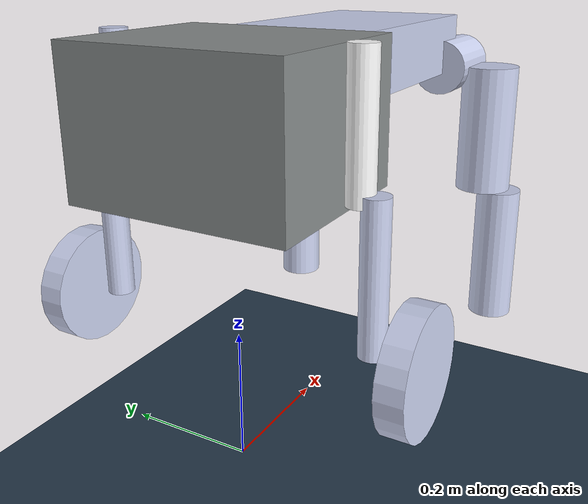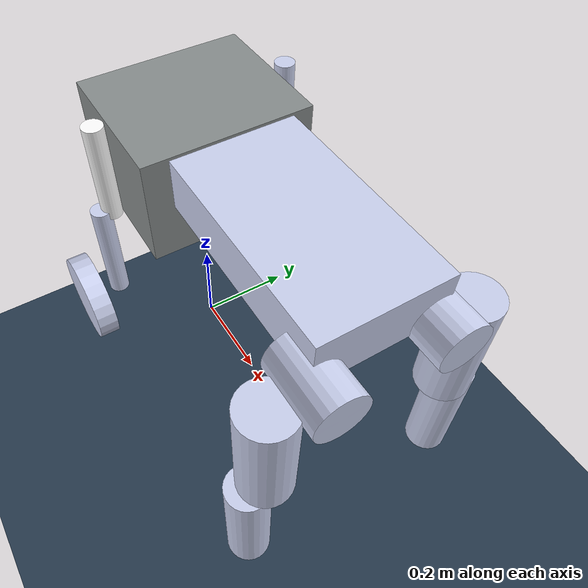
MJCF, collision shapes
<mujoco model="Wheel_legged_sim">
  <compiler angle="radian" meshdir="../meshes_controller/" autolimits="true"/>
    <size njmax="500" nconmax="100" />
    <option timestep="0.001" iterations="50" solver="PGS" gravity="0 0 -9.81" noslip_iterations="20">
    </option>
    <default>
      <geom contype="1" conaffinity="1" condim="1" solref="0.005 1"/>
    </default>
    <visual>
      <quality shadowsize="4096"/>
      <global realtime="1"/>
    </visual>
    <asset>
      <texture type="skybox" builtin="gradient" rgb1="0.3 0.5 0.7" rgb2="0 0 0" width="512" height="512"/>
      <texture name="texplane" type="2d" builtin="checker" rgb1=".2 .3 .4" rgb2=".1 0.15 0.2"
        width="512" height="512" mark="cross" markrgb=".8 .8 .8"/>
      <texture name="texplane2" type="2d" builtin="checker" rgb1="1 0.3137 0.1843" rgb2="0.0 0.30196 0.38039"
        width="512" height="512" mark="cross" markrgb=".8 .8 .8"/>

      <material name="matplane" reflectance="0." texture="texplane" texrepeat="1 1" texuniform="true"/>
      <material name="matplane2" reflectance="0.1" texture="texplane2" texrepeat="1 1" texuniform="true"/>
      <material name='obstacle'  rgba='0.9 0.6 0.2 1'/>
      <material name='visualgeom'  rgba='0.5 0.9 0.2 1'/>
      <material name='visualgeom2'  rgba='0.5 0.9 0.2 1'/>
      <mesh name="base_link" file="base_link.STL"/>
      <mesh name="waist_Link" file="waist_Link.STL"/>
      <mesh name="Labad_Link" file="Labad_Link.STL"/>
      <mesh name="Lhip_Link" file="Lhip_Link.STL"/>
      <mesh name="Lknee_Link" file="Lknee_Link.STL"/>
      <mesh name="Rabad_Link" file="Rabad_Link.STL"/>
      <mesh name="Rhip_Link" file="Rhip_Link.STL"/>
      <mesh name="Rknee_Link" file="Rknee_Link.STL"/>
      <mesh name="LB_hip_Link" file="LB_hip_Link.STL"/>
      <mesh name="LB_knee_Link" file="LB_knee_Link.STL"/>
      <mesh name="Lwheel_Link" file="Lwheel_Link.STL"/>
      <mesh name="RB_hip_Link" file="RB_hip_Link.STL"/>
      <mesh name="RB_knee_Link" file="RB_knee_Link.STL"/>
      <mesh name="Rwheel_Link" file="Rwheel_Link.STL"/>
  </asset>
  <worldbody>
    <light directional="false" cutoff="60" exponent="1" diffuse=".5 .5 .5" specular=".1 .1 .1" pos="0.5 0.1 0.8" dir="-0.5 -0.1 -0.8"/>
    <geom name="ground" type="plane" size="0 0 1" pos="0.01 0 -0.285" quat="1 0 0 0" material="matplane" condim="3" contype="15" conaffinity='0' friction="1.2 0.8 0.8"/>
    <body name="base_link" pos="0 0 0.5">
      <freejoint/>

      <inertial pos="0.1015927041891579 0.00071509554661818 0.0289337663641155" quat="1 0 0 0" mass="16.8740" diaginertia="0.29867 0.48858 0.65671 " />
      <geom type="mesh" contype="0" conaffinity="0" group="1" density="0" rgba="0.529412 0.54902 0.54902 1" mesh="base_link"/>
      <geom size="0.14 0.165 0.1065" pos="0 0 0.02" type="box" rgba="0.529412 0.54902 0.54902 0"/>
      <geom size="0.0075 0.0075 0.002" type="box" contype="0" conaffinity="0" group="1" density="0"/>
      <geom pos="0.000107024 0.00535894 0.0709154" type="mesh" contype="0" conaffinity="0" group="1" density="0" rgba="0.792157 0.819608 0.933333 1" mesh="waist_Link"/>
      <geom size="0.28 0.12 0.05" pos="0.280107 0.00535894 0.0709154" type="box" rgba="0.792157 0.819608 0.933333 0"/>
      <site name="base_imu" pos="0.0 0.0 0.0" />

      <body name="LB_hip_Link" pos="0.00011754 0.17466 0.068919" gravcomp="0">
        <inertial pos="-0.00031244 0.015158 -0.038984" quat="0.707101 0.00280574 0.00280574 0.707101" mass="0.34817" diaginertia="0.00143 0.00135008 8.99206e-05"/>
        <joint name="Joint_LBhip" pos="0 0 0" axis="0 1 0" range="-0.529 0.529" damping="0.01" frictionloss="0.01" armature="0.01"/>
        <geom type="mesh" contype="0" conaffinity="0" group="1" density="0" rgba="0.79216 0.81961 0.93333 1" mesh="LB_hip_Link"/>
        <geom size="0.02 0.1" pos="0 0.02 -0.04" type="cylinder" rgba="0.79216 0.81961 0.93333 0"/>
        <body name="LB_knee_Link" pos="-0.0053715 0.041755 -0.34324" gravcomp="0">
          <inertial pos="0.00312425 0.00711464 0.0897913" quat="1 0 0 0" mass="0.5017" diaginertia="0.00438345 0.00433786 0.000194704"/>
          <joint name="Joint_LBknee" pos="0 0 0" axis="0 0 -1" type="slide" range="-0.16 0 " damping="0.01" frictionloss="0.01" armature="0.01"/>
          <geom type="mesh" contype="0" conaffinity="0" group="1" density="0" rgba="0.79216 0.81961 0.93333 1" mesh="LB_knee_Link"/>
          <geom size="0.02 0.11" pos="0 0 0.11" type="cylinder" rgba="0.79216 0.81961 0.93333 0"/>
          <geom size="0.01" pos="0 0.063 -0.07" contype="0" conaffinity="0" group="1" density="0" rgba="0.52941 0.54902 0.54902 1"/>
          <geom size="0.01" pos="0 0.063 -0.07" rgba="0.52941 0.54902 0.54902 1"/>
          <body name="Lwheel_Link" pos="0.0026399 0.0617 -0.0001032" gravcomp="0">
            <inertial pos="0.00010458 -0.011045 -3.7866e-05" quat="0.707107 0 0 0.707107" mass="0.825401" diaginertia="0.00186 0.00145 0.00145"/>
            <geom type="mesh" contype="0" conaffinity="0" group="1" density="0" rgba="0.79216 0.81961 0.93333 1" mesh="Lwheel_Link"/>
            <geom size="0.09 0.02" quat="0.707388 0.706825 0 0" type="cylinder" rgba="0.79216 0.81961 0.93333 0"/>
          </body>
        </body>
      </body>
      <body name="RB_hip_Link" pos="0.00010384 -0.16944 0.06892" gravcomp="0">
        <inertial pos="-0.000335186 -0.0151577 -0.0389842" quat="0.707101 0.00280574 0.00280574 0.707101" mass="0.34817" diaginertia="0.00143 0.00135008 8.99206e-05"/>
        <joint name="Joint_RBhip" pos="0 0 0" axis="0 1 0" range="-0.529 0.529" damping="0.01" frictionloss="0.01" armature="0.01"/>
        <geom type="mesh" contype="0" conaffinity="0" group="1" density="0" rgba="1 1 1 1" mesh="RB_hip_Link"/>
        <geom size="0.02 0.1" pos="0 -0.02 -0.04" type="cylinder" rgba="1 1 1 0"/>
        <body name="RB_knee_Link" pos="-0.00053861 -0.041755 -0.34324" gravcomp="0">
          <inertial pos="-0.00132502 -0.00711464 0.0881203" quat="1 0 0 0" mass="0.5017" diaginertia="0.00436686 0.0042997 0.000195955"/>
          <joint name="Joint_RBknee" pos="0 0 0" axis="0 0 -1" type="slide" range="-0.16 0" damping="0.01" frictionloss="0.01" armature="0.01"/>
          <geom type="mesh" contype="0" conaffinity="0" group="1" density="0" rgba="0.79216 0.81961 0.93333 1" mesh="RB_knee_Link"/>
          <geom size="0.02 0.11" pos="0 0 0.11" type="cylinder" rgba="0.79216 0.81961 0.93333 0"/>
          <geom size="0.01" pos="0 -0.063 -0.07" contype="0" conaffinity="0" group="1" density="0" rgba="0.52941 0.54902 0.54902 1"/>
          <geom size="0.01" pos="0 -0.063 -0.07" rgba="0.52941 0.54902 0.54902 1"/>
          <body name="Rwheel_Link" pos="-0.0025095 -0.0617 -0.0021113" gravcomp="0">
            <inertial pos="0.00010458 0.0110455 -3.7866e-05" quat="0.707107 0 0 0.707107" mass="0.825401" diaginertia="0.00186 0.00145 0.00145"/>
            <geom type="mesh" contype="0" conaffinity="0" group="1" density="0" rgba="0.79216 0.81961 0.93333 1" mesh="Rwheel_Link"/>
            <geom size="0.09 0.02" quat="0.707388 0.706825 0 0" type="cylinder" rgba="0.79216 0.81961 0.93333 0"/>
          </body>
        </body>
      </body>

      <body name="Labad_Link" pos="0.560177 0.105789 0.033176" gravcomp="0">
        <inertial pos="-0.0059569 -0.010794 -0.00017197" quat="0.492985 0.506339 -0.497711 0.502862" mass="1.27" diaginertia="0.00284008 0.00270037 0.00161955"/>
        <joint name="Joint_Labad" pos="0 0 0" axis="1 0 0" range="-0.424 1.04" damping="0.01" frictionloss="0.01" armature="0.01"/>
        <geom type="mesh" contype="0" conaffinity="0" group="1" density="0" rgba="0.79216 0.81961 0.93333 1" mesh="Labad_Link"/>
        <geom size="0.048 0.065" quat="0.707388 0 0.706825 0" type="cylinder" rgba="0.79216 0.81961 0.93333 0"/>
        <body name="Lhip_Link" pos="-0.00017444 0.077692 0.00019391" gravcomp="0">
          <inertial pos="-0.00072323 -0.0046042 -0.086506" quat="0.705137 0.0170159 -0.013058 0.708747" mass="1.02" diaginertia="0.0099566 0.00953027 0.000773122"/>
          <joint name="Joint_Lhip" pos="0 0 0" axis="0 1 0" range="-0.503 1.41" damping="0.01" frictionloss="0.01" armature="0.01"/>
          <geom type="mesh" contype="0" conaffinity="0" group="1" density="0" rgba="0.79216 0.81961 0.93333 1" mesh="Lhip_Link"/>
          <geom size="0.05 0.115" pos="0 0 -0.115" type="cylinder" rgba="0.79216 0.81961 0.93333 0"/>
          <body name="Lknee_Link" pos="-0.0016586 0.031407 -0.23005" gravcomp="0">
            <inertial pos="-0.00190487 -4.315e-06 -0.107568" quat="0.560944 0.0139704 -0.00976393 0.827678" mass="0.24" diaginertia="0.00159393 0.00159207 3.77469e-05"/>
            <joint name="Joint_Lknee" pos="0 0 0" axis="0 1 0" range="-3.14 0" damping="0.01" frictionloss="0.01" armature="0.01"/>
            <geom type="mesh" contype="0" conaffinity="0" group="1" density="0" rgba="0.79216 0.81961 0.93333 1" mesh="Lknee_Link"/>
            <geom size="0.04 0.125" pos="0 0 -0.125" type="cylinder" rgba="0.79216 0.81961 0.93333 0"/>
          </body>
        </body>
      </body>
      <body name="Rabad_Link" pos="0.560077 -0.107751 0.031676" gravcomp="0">
        <inertial pos="-0.0060593 0.010773 0.00059437" quat="0.506339 0.492985 -0.502862 0.497711" mass="1.27" diaginertia="0.00284008 0.00270037 0.00161955"/>
        <joint name="Joint_Rabad" pos="0 0 0" axis="1 0 0" range="-1.04 0.424" damping="0.01" frictionloss="0.01" armature="0.01"/>
        <geom type="mesh" contype="0" conaffinity="0" group="1" density="0" rgba="0.79216 0.81961 0.93333 1" mesh="Rabad_Link"/>
        <geom size="0.048 0.065" quat="0.707388 0 0.706825 0" type="cylinder" rgba="0.79216 0.81961 0.93333 0"/>
        <body name="Rhip_Link" pos="-7.1411e-05 -0.076714 0.00089968" gravcomp="0">
          <inertial pos="-0.00032807 0.0034224 -0.086549" quat="0.708814 -0.0138294 0.0177784 0.705035" mass="1.02" diaginertia="0.00995835 0.00953027 0.00077138"/>
          <joint name="Joint_Rhip" pos="0 0 0" axis="0 1 0" range="-0.503 1.41" damping="0.01" frictionloss="0.01" armature="0.01"/>
          <geom type="mesh" contype="0" conaffinity="0" group="1" density="0" rgba="0.79216 0.81961 0.93333 1" mesh="Rhip_Link"/>
          <geom size="0.05 0.115" pos="0 0 -0.115" type="cylinder" rgba="0.79216 0.81961 0.93333 0"/>
          <body name="Rknee_Link" pos="-0.0011405 -0.032389 -0.22976" gravcomp="0">
            <inertial pos="-0.0051946 -0.00060137 -0.107718" quat="0.924397 -0.00799373 0.0202103 0.380813" mass="0.24" diaginertia="0.00159393 0.00159207 3.77469e-05"/>
            <joint name="Joint_Rknee" pos="0 0 0" axis="0 1 0" range="-3.14 0" damping="0.01" frictionloss="0.01" armature="0.01"/>
            <geom type="mesh" contype="0" conaffinity="0" group="1" density="0" rgba="0.79216 0.81961 0.93333 1" mesh="Rknee_Link"/>
            <geom size="0.04 0.125" pos="0 0 -0.125" type="cylinder" rgba="0.79216 0.81961 0.93333 0"/>
          </body>
        </body>
      </body>
    </body>
  </worldbody>

  <actuator>
    <motor name="A8112-1" joint="Joint_LBhip" gear="1" ctrllimited="true" ctrlrange="-100 100"/>
    <motor name="A8112-2" joint="Joint_LBknee" gear="1" ctrllimited="true" ctrlrange="-100 100"/>
    <motor name="A8112-3" joint="Joint_RBhip" gear="1" ctrllimited="true" ctrlrange="-100 100"/>
    <motor name="A8112-4" joint="Joint_RBknee" gear="1" ctrllimited="true" ctrlrange="-100 100"/>

    <motor name="DM1" joint="Joint_Labad" gear="1" ctrllimited="true" ctrlrange="-50 50"/>
    <motor name="DM2" joint="Joint_Lhip"  gear="1" ctrllimited="true" ctrlrange="-50 50"/>
    <motor name="DM3" joint="Joint_Lknee" gear="1" ctrllimited="true" ctrlrange="-50 50"/>
    <motor name="DM4" joint="Joint_Rabad" gear="1" ctrllimited="true" ctrlrange="-50 50"/>
    <motor name="DM5" joint="Joint_Rhip"  gear="1" ctrllimited="true" ctrlrange="-50 50"/>
    <motor name="DM6" joint="Joint_Rknee" gear="1" ctrllimited="true" ctrlrange="-50 50"/>

  </actuator>

  <sensor>
    <jointpos name="Lf_motor_pos"   joint="Joint_LBhip"  />
    <jointpos name="Lb_motor_pos"   joint="Joint_LBknee" />
    <jointpos name="Rf_motor_pos"   joint="Joint_RBhip"  />
    <jointpos name="Rb_motor_pos"   joint="Joint_RBknee" />

    <jointpos name="Labad_pos"      joint="Joint_Labad"  />
    <jointpos name="Lhip_pos"       joint="Joint_Lhip"   />
    <jointpos name="Lknee_pos"      joint="Joint_Lknee"  />
    <jointpos name="Rabad_pos"      joint="Joint_Rabad"  />
    <jointpos name="Rhip_pos"       joint="Joint_Rhip"   />
    <jointpos name="Rknee_pos"      joint="Joint_Rknee"  />

    <jointvel name="Lf_motor_vel"   joint="Joint_LBhip"  />
    <jointvel name="Lb_motor_vel"   joint="Joint_LBknee" />
    <jointvel name="Rf_motor_vel"   joint="Joint_RBhip"  />
    <jointvel name="Rb_motor_vel"   joint="Joint_RBknee" />

    <jointvel name="Labad_vel"      joint="Joint_Labad" />
    <jointvel name="Lhip_vel"       joint="Joint_Lhip"  />
    <jointvel name="Lknee_vel"      joint="Joint_Lknee" />
    <jointvel name="Rabad_vel"      joint="Joint_Rabad" />
    <jointvel name="Rhip_vel"       joint="Joint_Rhip"  />
    <jointvel name="Rknee_vel"      joint="Joint_Rknee" />

    <accelerometer name="BodyAcc" site="base_imu"/>
    <velocimeter name="BodyVel" site="base_imu"/>
    <gyro name="BodyGyro" site="base_imu"/>
    <framepos name="BodyPos" objtype="site" objname="base_imu"/>
    <framequat name="BodyQuat" objtype="site" objname="base_imu"/>
  </sensor>

</mujoco>
